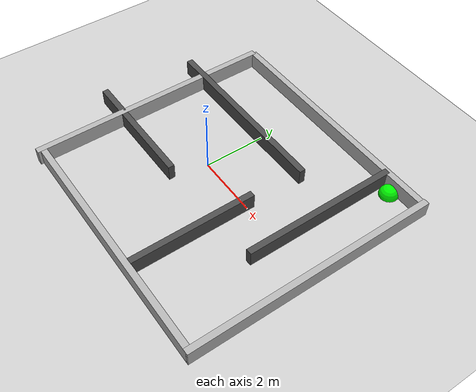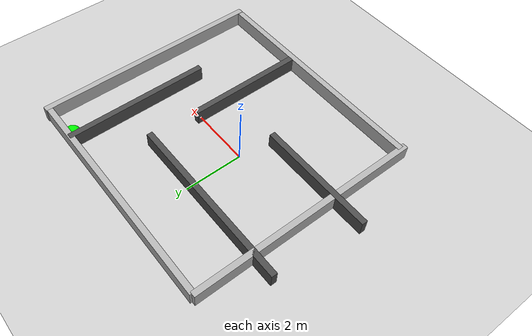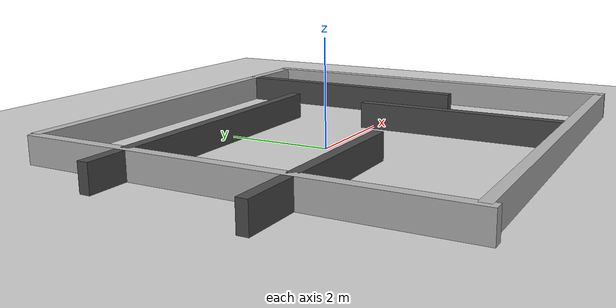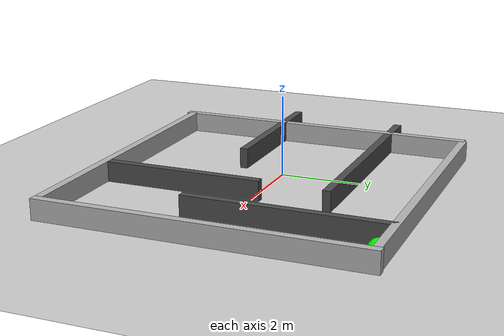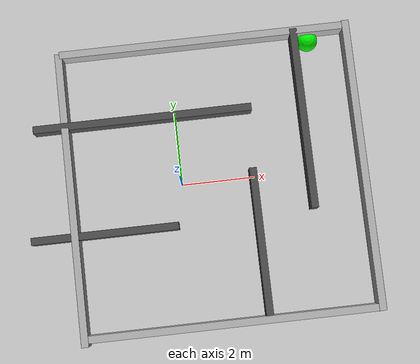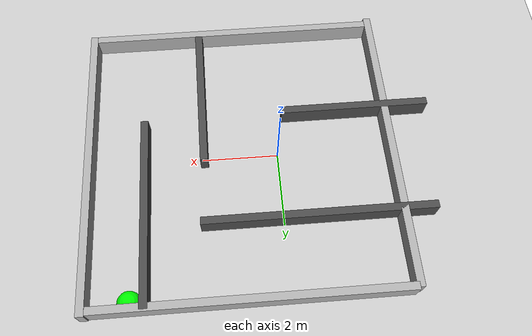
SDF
<sdf version='1.10'>
  <world name='maze_world'>
    <plugin name='gz::sim::systems::Physics' filename='gz-sim-physics-system'/>
    <plugin name='gz::sim::systems::UserCommands' filename='gz-sim-user-commands-system'/>
    <plugin name='gz::sim::systems::SceneBroadcaster' filename='gz-sim-scene-broadcaster-system'/>
    <!-- 传感器系统 -->
    <plugin
      filename="gz-sim-sensors-system"
      name="gz::sim::systems::Sensors">
      <render_engine>ogre2</render_engine>
    </plugin>
    <gravity>0 0 -9.8000000000000007</gravity>
    <magnetic_field>5.5644999999999998e-06 2.2875799999999999e-05 -4.2388400000000002e-05</magnetic_field>
    <atmosphere type='adiabatic'/>
    <physics type='ode'>
      <max_step_size>0.001</max_step_size>
      <real_time_factor>1</real_time_factor>
      <real_time_update_rate>1000</real_time_update_rate>
    </physics>
    <scene>
      <ambient>0.400000006 0.400000006 0.400000006 1</ambient>
      <background>0.699999988 0.699999988 0.699999988 1</background>
      <shadows>true</shadows>
    </scene>
    <include>
      <uri>https://fuel.gazebosim.org/1.0/openrobotics/models/ground_plane</uri>
      <name>ground_plane</name>
      <pose>0 0 0 0 0 0</pose>
    </include>
    <model name='wall1'>
      <static>true</static>
      <pose>1.0145740509033203 3.8907198905944824 0 0 0 0</pose>
      <link name='link'>
        <collision name='collision'>
          <geometry>
            <box>
              <size>8 0.20000000000000001 1</size>
            </box>
          </geometry>
          <surface>
            <friction>
              <ode/>
            </friction>
            <bounce/>
            <contact/>
          </surface>
        </collision>
        <visual name='visual'>
          <geometry>
            <box>
              <size>8 0.20000000000000001 1</size>
            </box>
          </geometry>
          <material>
            <ambient>0.699999988 0.699999988 0.699999988 1</ambient>
            <diffuse>0.699999988 0.699999988 0.699999988 1</diffuse>
          </material>
        </visual>
        <pose>0 0 0 0 0 0</pose>
        <inertial>
          <pose>0 0 0 0 0 0</pose>
          <mass>1</mass>
          <inertia>
            <ixx>1</ixx>
            <ixy>0</ixy>
            <ixz>0</ixz>
            <iyy>1</iyy>
            <iyz>0</iyz>
            <izz>1</izz>
          </inertia>
        </inertial>
        <enable_wind>false</enable_wind>
      </link>
      <self_collide>false</self_collide>
    </model>
    <model name='wall2'>
      <static>true</static>
      <pose>4.9693799018859863 0.017209386453032494 0.0045015299692749977 0 0 0</pose>
      <link name='link'>
        <collision name='collision'>
          <geometry>
            <box>
              <size>0.20000000000000001 8 1</size>
            </box>
          </geometry>
          <surface>
            <friction>
              <ode/>
            </friction>
            <bounce/>
            <contact/>
          </surface>
        </collision>
        <visual name='visual'>
          <geometry>
            <box>
              <size>0.20000000000000001 8 1</size>
            </box>
          </geometry>
          <material>
            <ambient>0.699999988 0.699999988 0.699999988 1</ambient>
            <diffuse>0.699999988 0.699999988 0.699999988 1</diffuse>
          </material>
        </visual>
        <pose>0 0 0 0 0 0</pose>
        <inertial>
          <pose>0 0 0 0 0 0</pose>
          <mass>1</mass>
          <inertia>
            <ixx>1</ixx>
            <ixy>0</ixy>
            <ixz>0</ixz>
            <iyy>1</iyy>
            <iyz>0</iyz>
            <izz>1</izz>
          </inertia>
        </inertial>
        <enable_wind>false</enable_wind>
      </link>
      <self_collide>false</self_collide>
    </model>
    <model name='inner_wall1'>
      <static>true</static>
      <pose>-0.88241887092590332 1.8919299840927124 0 0 0 0</pose>
      <link name='link'>
        <collision name='collision'>
          <geometry>
            <box>
              <size>6 0.20000000000000001 1</size>
            </box>
          </geometry>
          <surface>
            <friction>
              <ode/>
            </friction>
            <bounce/>
            <contact/>
          </surface>
        </collision>
        <visual name='visual'>
          <geometry>
            <box>
              <size>6 0.20000000000000001 1</size>
            </box>
          </geometry>
          <material>
            <ambient>0.300000012 0.300000012 0.300000012 1</ambient>
            <diffuse>0.300000012 0.300000012 0.300000012 1</diffuse>
          </material>
        </visual>
        <pose>0 0 0 0 0 0</pose>
        <inertial>
          <pose>0 0 0 0 0 0</pose>
          <mass>1</mass>
          <inertia>
            <ixx>1</ixx>
            <ixy>0</ixy>
            <ixz>0</ixz>
            <iyy>1</iyy>
            <iyz>0</iyz>
            <izz>1</izz>
          </inertia>
        </inertial>
        <enable_wind>false</enable_wind>
      </link>
      <self_collide>false</self_collide>
    </model>
    <model name='inner_wall2'>
      <static>true</static>
      <pose>1.9612282514572144 -1.7886300086975098 0 0 0 0</pose>
      <link name='link'>
        <collision name='collision'>
          <geometry>
            <box>
              <size>0.20000000000000001 4 1</size>
            </box>
          </geometry>
          <surface>
            <friction>
              <ode/>
            </friction>
            <bounce/>
            <contact/>
          </surface>
        </collision>
        <visual name='visual'>
          <geometry>
            <box>
              <size>0.20000000000000001 4 1</size>
            </box>
          </geometry>
          <material>
            <ambient>0.300000012 0.300000012 0.300000012 1</ambient>
            <diffuse>0.300000012 0.300000012 0.300000012 1</diffuse>
          </material>
        </visual>
        <pose>0 0 0 0 0 0</pose>
        <inertial>
          <pose>0 0 0 0 0 0</pose>
          <mass>1</mass>
          <inertia>
            <ixx>1</ixx>
            <ixy>0</ixy>
            <ixz>0</ixz>
            <iyy>1</iyy>
            <iyz>0</iyz>
            <izz>1</izz>
          </inertia>
        </inertial>
        <enable_wind>false</enable_wind>
      </link>
      <self_collide>false</self_collide>
    </model>
    <model name='inner_wall3'>
      <static>true</static>
      <pose>-2.1946415901184082 -1.1302599906921387 0 0 0 0</pose>
      <link name='link'>
        <collision name='collision'>
          <geometry>
            <box>
              <size>4 0.20000000000000001 1</size>
            </box>
          </geometry>
          <surface>
            <friction>
              <ode/>
            </friction>
            <bounce/>
            <contact/>
          </surface>
        </collision>
        <visual name='visual'>
          <geometry>
            <box>
              <size>4 0.20000000000000001 1</size>
            </box>
          </geometry>
          <material>
            <ambient>0.300000012 0.300000012 0.300000012 1</ambient>
            <diffuse>0.300000012 0.300000012 0.300000012 1</diffuse>
          </material>
        </visual>
        <pose>0 0 0 0 0 0</pose>
        <inertial>
          <pose>0 0 0 0 0 0</pose>
          <mass>1</mass>
          <inertia>
            <ixx>1</ixx>
            <ixy>0</ixy>
            <ixz>0</ixz>
            <iyy>1</iyy>
            <iyz>0</iyz>
            <izz>1</izz>
          </inertia>
        </inertial>
        <enable_wind>false</enable_wind>
      </link>
      <self_collide>false</self_collide>
    </model>
    <model name='inner_wall4'>
      <static>true</static>
      <pose>3.5123047828674316 1.4415700435638428 0 0 0 0</pose>
      <link name='link'>
        <collision name='collision'>
          <geometry>
            <box>
              <size>0.20000000000000001 5 1</size>
            </box>
          </geometry>
          <surface>
            <friction>
              <ode/>
            </friction>
            <bounce/>
            <contact/>
          </surface>
        </collision>
        <visual name='visual'>
          <geometry>
            <box>
              <size>0.20000000000000001 5 1</size>
            </box>
          </geometry>
          <material>
            <ambient>0.300000012 0.300000012 0.300000012 1</ambient>
            <diffuse>0.300000012 0.300000012 0.300000012 1</diffuse>
          </material>
        </visual>
        <pose>0 0 0 0 0 0</pose>
        <inertial>
          <pose>0 0 0 0 0 0</pose>
          <mass>1</mass>
          <inertia>
            <ixx>1</ixx>
            <ixy>0</ixy>
            <ixz>0</ixz>
            <iyy>1</iyy>
            <iyz>0</iyz>
            <izz>1</izz>
          </inertia>
        </inertial>
        <enable_wind>false</enable_wind>
      </link>
      <self_collide>false</self_collide>
    </model>
    <model name='goal'>
      <static>true</static>
      <pose>3.9225850105285645 3.680340051651001 0 0 0 0</pose>
      <link name='link'>
        <visual name='marker'>
          <geometry>
            <sphere>
              <radius>0.29999999999999999</radius>
            </sphere>
          </geometry>
          <material>
            <ambient>0 1 0 1</ambient>
            <diffuse>0 1 0 1</diffuse>
          </material>
        </visual>
        <pose>0 0 0 0 0 0</pose>
        <inertial>
          <pose>0 0 0 0 0 0</pose>
          <mass>1</mass>
          <inertia>
            <ixx>1</ixx>
            <ixy>0</ixy>
            <ixz>0</ixz>
            <iyy>1</iyy>
            <iyz>0</iyz>
            <izz>1</izz>
          </inertia>
        </inertial>
        <enable_wind>false</enable_wind>
      </link>
      <self_collide>false</self_collide>
    </model>
    <model name='wall1_1'>
      <static>true</static>
      <pose>0.9993249773979187 -3.8838057518005371 0 0 0 0</pose>
      <link name='link'>
        <collision name='collision'>
          <geometry>
            <box>
              <size>8 0.20000000000000001 1</size>
            </box>
          </geometry>
          <surface>
            <friction>
              <ode/>
            </friction>
            <bounce/>
            <contact/>
          </surface>
        </collision>
        <visual name='visual'>
          <geometry>
            <box>
              <size>8 0.20000000000000001 1</size>
            </box>
          </geometry>
          <material>
            <ambient>0.699999988 0.699999988 0.699999988 1</ambient>
            <diffuse>0.699999988 0.699999988 0.699999988 1</diffuse>
          </material>
        </visual>
        <pose>0 0 0 0 0 0</pose>
        <inertial>
          <pose>0 0 0 0 0 0</pose>
          <mass>1</mass>
          <inertia>
            <ixx>1</ixx>
            <ixy>0</ixy>
            <ixz>0</ixz>
            <iyy>1</iyy>
            <iyz>0</iyz>
            <izz>1</izz>
          </inertia>
        </inertial>
        <enable_wind>false</enable_wind>
      </link>
      <self_collide>false</self_collide>
    </model>
    <model name='wall2_1'>
      <static>true</static>
      <pose>-3.0124382972717285 -0.073258601129055023 0 0 0 0</pose>
      <link name='link'>
        <collision name='collision'>
          <geometry>
            <box>
              <size>0.20000000000000001 8 1</size>
            </box>
          </geometry>
          <surface>
            <friction>
              <ode/>
            </friction>
            <bounce/>
            <contact/>
          </surface>
        </collision>
        <visual name='visual'>
          <geometry>
            <box>
              <size>0.20000000000000001 8 1</size>
            </box>
          </geometry>
          <material>
            <ambient>0.699999988 0.699999988 0.699999988 1</ambient>
            <diffuse>0.699999988 0.699999988 0.699999988 1</diffuse>
          </material>
        </visual>
        <pose>0 0 0 0 0 0</pose>
        <inertial>
          <pose>0 0 0 0 0 0</pose>
          <mass>1</mass>
          <inertia>
            <ixx>1</ixx>
            <ixy>0</ixy>
            <ixz>0</ixz>
            <iyy>1</iyy>
            <iyz>0</iyz>
            <izz>1</izz>
          </inertia>
        </inertial>
        <enable_wind>false</enable_wind>
      </link>
      <self_collide>false</self_collide>
    </model>
    <light name='sun' type='directional'>
      <pose>0 0 10 0 0 0</pose>
      <cast_shadows>true</cast_shadows>
      <intensity>1</intensity>
      <direction>-0.5 0.10000000000000001 -0.90000000000000002</direction>
      <diffuse>0.800000012 0.800000012 0.800000012 1</diffuse>
      <specular>0.200000003 0.200000003 0.200000003 1</specular>
      <attenuation>
        <range>1000</range>
        <linear>0.01</linear>
        <constant>0.90000000000000002</constant>
        <quadratic>0.001</quadratic>
      </attenuation>
      <spot>
        <inner_angle>0</inner_angle>
        <outer_angle>0</outer_angle>
        <falloff>0</falloff>
      </spot>
    </light>
  </world>
</sdf>
